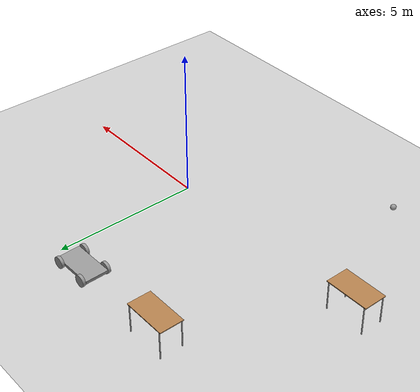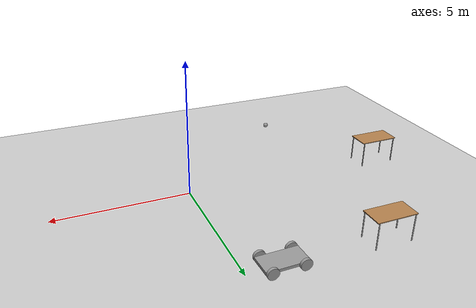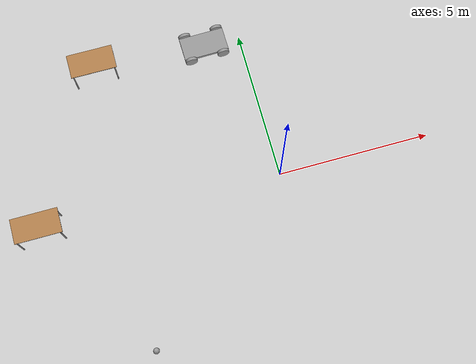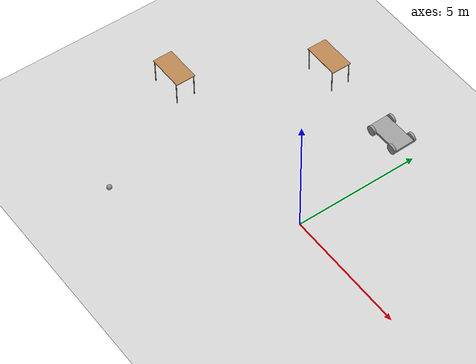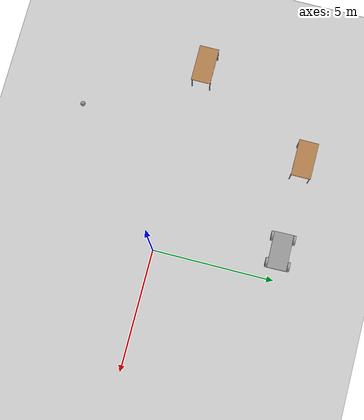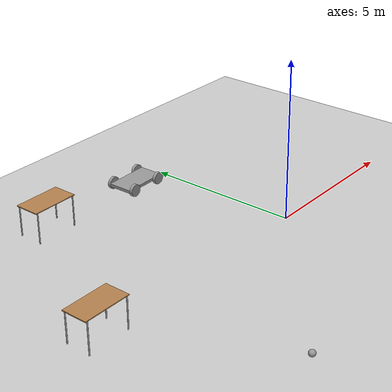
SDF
<sdf version="1.6">
 <world name="default">
  <model name="ground_plane">
   <static>1</static>
   <link name="link">
    <collision name="collision">
     <geometry><plane><normal>0 0 1</normal><size>100 100</size></plane></geometry>
     <surface>
      <contact><collide_bitmask>65535</collide_bitmask></contact>
      <friction><ode><mu>100</mu><mu2>50</mu2></ode></friction>
     </surface>
    </collision>
    <visual name="visual">
     <cast_shadows>0</cast_shadows>
     <geometry><plane><normal>0 0 1</normal><size>100 100</size></plane></geometry>
     <material>
      <script><uri>file://media/materials/scripts/gazebo.material</uri><name>Gazebo/Grey</name></script>
     </material>
    </visual>
   </link>
  </model>
  <model name="4_wheeled_robots">
   <link name="link_5">
    <inertial>
     <mass>1</mass>
     <inertia>
      <ixx>0.166667</ixx>
      <ixy>0</ixy>
      <ixz>0</ixz>
      <iyy>0.166667</iyy>
      <iyz>0</iyz>
      <izz>0.166667</izz>
     </inertia>
    </inertial>
    <pose>-0 0 0.2 0 -0 0</pose>
    <visual name="visual">
     <geometry><box><size>1.5 0.8 0.1</size></box></geometry>
     <material>
      <lighting>1</lighting>
      <script><uri>file://media/materials/scripts/gazebo.material</uri><name>Gazebo/Grey</name></script>
      <shader type="pixel"><normal_map>__default__</normal_map></shader>
      <ambient>0.3 0.3 0.3 1</ambient>
      <diffuse>0.7 0.7 0.7 1</diffuse>
      <specular>0.01 0.01 0.01 1</specular>
      <emissive>0 0 0 1</emissive>
     </material>
    </visual>
    <collision name="collision">
     <geometry><box><size>1.5 0.8 0.1</size></box></geometry>
     <surface>
      <friction>
       <ode><mu>1</mu><mu2>1</mu2><fdir1>0 0 0</fdir1><slip1>0</slip1><slip2>0</slip2></ode>
       <torsional>
        <coefficient>1</coefficient>
        <patch_radius>0</patch_radius>
        <surface_radius>0</surface_radius>
        <use_patch_radius>1</use_patch_radius>
        <ode><slip>0</slip></ode>
       </torsional>
      </friction>
      <bounce><restitution_coefficient>0</restitution_coefficient><threshold>1e+06</threshold></bounce>
      <contact>
       <collide_without_contact>0</collide_without_contact>
       <collide_without_contact_bitmask>1</collide_without_contact_bitmask>
       <collide_bitmask>1</collide_bitmask>
       <ode>
        <soft_cfm>0</soft_cfm>
        <soft_erp>0.2</soft_erp>
        <kp>1e+13</kp>
        <kd>1</kd>
        <max_vel>0.01</max_vel>
        <min_depth>0</min_depth>
       </ode>
       <bullet>
        <split_impulse>1</split_impulse>
        <split_impulse_penetration_threshold>-0.01</split_impulse_penetration_threshold>
        <soft_cfm>0</soft_cfm>
        <soft_erp>0.2</soft_erp>
        <kp>1e+13</kp>
        <kd>1</kd>
       </bullet>
      </contact>
     </surface>
    </collision>
   </link>
   <link name="link_6_clone_0">
    <inertial>
     <mass>1</mass>
     <inertia><ixx>0.145833</ixx><ixy>0</ixy><ixz>0</ixz><iyy>0.145833</iyy><iyz>0</iyz><izz>0.125</izz></inertia>
    </inertial>
    <pose>0.55 0.450019 0.2 1.5707 -0 0</pose>
    <visual name="visual">
     <geometry><cylinder><radius>0.2</radius><length>0.1</length></cylinder></geometry>
     <material>
      <lighting>1</lighting>
      <script><uri>file://media/materials/scripts/gazebo.material</uri><name>Gazebo/Grey</name></script>
      <shader type="pixel"><normal_map>__default__</normal_map></shader>
      <ambient>0.3 0.3 0.3 1</ambient>
      <diffuse>0.7 0.7 0.7 1</diffuse>
      <specular>0.01 0.01 0.01 1</specular>
      <emissive>0 0 0 1</emissive>
     </material>
    </visual>
    <collision name="collision">
     <geometry><cylinder><radius>0.2</radius><length>0.1</length></cylinder></geometry>
     <surface>
      <friction>
       <ode><mu>1</mu><mu2>1</mu2><fdir1>0 0 0</fdir1><slip1>0</slip1><slip2>0</slip2></ode>
       <torsional>
        <coefficient>1</coefficient>
        <patch_radius>0</patch_radius>
        <surface_radius>0</surface_radius>
        <use_patch_radius>1</use_patch_radius>
        <ode><slip>0</slip></ode>
       </torsional>
      </friction>
      <bounce><restitution_coefficient>0</restitution_coefficient><threshold>1e+06</threshold></bounce>
      <contact>
       <collide_without_contact>0</collide_without_contact>
       <collide_without_contact_bitmask>1</collide_without_contact_bitmask>
       <collide_bitmask>1</collide_bitmask>
       <ode>
        <soft_cfm>0</soft_cfm>
        <soft_erp>0.2</soft_erp>
        <kp>1e+13</kp>
        <kd>1</kd>
        <max_vel>0.01</max_vel>
        <min_depth>0</min_depth>
       </ode>
       <bullet>
        <split_impulse>1</split_impulse>
        <split_impulse_penetration_threshold>-0.01</split_impulse_penetration_threshold>
        <soft_cfm>0</soft_cfm>
        <soft_erp>0.2</soft_erp>
        <kp>1e+13</kp>
        <kd>1</kd>
       </bullet>
      </contact>
     </surface>
    </collision>
   </link>
   <link name="link_6_clone_0_clone">
    <inertial>
     <mass>1</mass>
     <inertia><ixx>0.145833</ixx><ixy>0</ixy><ixz>0</ixz><iyy>0.145833</iyy><iyz>0</iyz><izz>0.125</izz></inertia>
    </inertial>
    <pose>0.55 -0.450019 0.2 1.5707 -0 0</pose>
    <visual name="visual">
     <geometry><cylinder><radius>0.2</radius><length>0.1</length></cylinder></geometry>
     <material>
      <lighting>1</lighting>
      <script><uri>file://media/materials/scripts/gazebo.material</uri><name>Gazebo/Grey</name></script>
      <shader type="pixel"><normal_map>__default__</normal_map></shader>
      <ambient>0.3 0.3 0.3 1</ambient>
      <diffuse>0.7 0.7 0.7 1</diffuse>
      <specular>0.01 0.01 0.01 1</specular>
      <emissive>0 0 0 1</emissive>
     </material>
    </visual>
    <collision name="collision">
     <geometry><cylinder><radius>0.2</radius><length>0.1</length></cylinder></geometry>
     <surface>
      <friction>
       <ode><mu>1</mu><mu2>1</mu2><fdir1>0 0 0</fdir1><slip1>0</slip1><slip2>0</slip2></ode>
       <torsional>
        <coefficient>1</coefficient>
        <patch_radius>0</patch_radius>
        <surface_radius>0</surface_radius>
        <use_patch_radius>1</use_patch_radius>
        <ode><slip>0</slip></ode>
       </torsional>
      </friction>
      <bounce><restitution_coefficient>0</restitution_coefficient><threshold>1e+06</threshold></bounce>
      <contact>
       <collide_without_contact>0</collide_without_contact>
       <collide_without_contact_bitmask>1</collide_without_contact_bitmask>
       <collide_bitmask>1</collide_bitmask>
       <ode>
        <soft_cfm>0</soft_cfm>
        <soft_erp>0.2</soft_erp>
        <kp>1e+13</kp>
        <kd>1</kd>
        <max_vel>0.01</max_vel>
        <min_depth>0</min_depth>
       </ode>
       <bullet>
        <split_impulse>1</split_impulse>
        <split_impulse_penetration_threshold>-0.01</split_impulse_penetration_threshold>
        <soft_cfm>0</soft_cfm>
        <soft_erp>0.2</soft_erp>
        <kp>1e+13</kp>
        <kd>1</kd>
       </bullet>
      </contact>
     </surface>
    </collision>
   </link>
   <link name="link_6_clone_0_clone_0">
    <inertial>
     <mass>1</mass>
     <inertia><ixx>0.145833</ixx><ixy>0</ixy><ixz>0</ixz><iyy>0.145833</iyy><iyz>0</iyz><izz>0.125</izz></inertia>
    </inertial>
    <pose>-0.55 -0.450019 0.2 1.5707 -0 0</pose>
    <visual name="visual">
     <geometry><cylinder><radius>0.2</radius><length>0.1</length></cylinder></geometry>
     <material>
      <lighting>1</lighting>
      <script><uri>file://media/materials/scripts/gazebo.material</uri><name>Gazebo/Grey</name></script>
      <shader type="pixel"><normal_map>__default__</normal_map></shader>
      <ambient>0.3 0.3 0.3 1</ambient>
      <diffuse>0.7 0.7 0.7 1</diffuse>
      <specular>0.01 0.01 0.01 1</specular>
      <emissive>0 0 0 1</emissive>
     </material>
    </visual>
    <collision name="collision">
     <geometry><cylinder><radius>0.2</radius><length>0.1</length></cylinder></geometry>
     <surface>
      <friction>
       <ode><mu>1</mu><mu2>1</mu2><fdir1>0 0 0</fdir1><slip1>0</slip1><slip2>0</slip2></ode>
       <torsional>
        <coefficient>1</coefficient>
        <patch_radius>0</patch_radius>
        <surface_radius>0</surface_radius>
        <use_patch_radius>1</use_patch_radius>
        <ode><slip>0</slip></ode>
       </torsional>
      </friction>
      <bounce><restitution_coefficient>0</restitution_coefficient><threshold>1e+06</threshold></bounce>
      <contact>
       <collide_without_contact>0</collide_without_contact>
       <collide_without_contact_bitmask>1</collide_without_contact_bitmask>
       <collide_bitmask>1</collide_bitmask>
       <ode>
        <soft_cfm>0</soft_cfm>
        <soft_erp>0.2</soft_erp>
        <kp>1e+13</kp>
        <kd>1</kd>
        <max_vel>0.01</max_vel>
        <min_depth>0</min_depth>
       </ode>
       <bullet>
        <split_impulse>1</split_impulse>
        <split_impulse_penetration_threshold>-0.01</split_impulse_penetration_threshold>
        <soft_cfm>0</soft_cfm>
        <soft_erp>0.2</soft_erp>
        <kp>1e+13</kp>
        <kd>1</kd>
       </bullet>
      </contact>
     </surface>
    </collision>
   </link>
   <link name="link_6_clone_1">
    <inertial>
     <mass>1</mass>
     <inertia><ixx>0.145833</ixx><ixy>0</ixy><ixz>0</ixz><iyy>0.145833</iyy><iyz>0</iyz><izz>0.125</izz></inertia>
    </inertial>
    <pose>-0.55 0.450019 0.2 1.5707 -0 0</pose>
    <visual name="visual">
     <geometry><cylinder><radius>0.2</radius><length>0.1</length></cylinder></geometry>
     <material>
      <lighting>1</lighting>
      <script><uri>file://media/materials/scripts/gazebo.material</uri><name>Gazebo/Grey</name></script>
      <shader type="pixel"><normal_map>__default__</normal_map></shader>
      <ambient>0.3 0.3 0.3 1</ambient>
      <diffuse>0.7 0.7 0.7 1</diffuse>
      <specular>0.01 0.01 0.01 1</specular>
      <emissive>0 0 0 1</emissive>
     </material>
    </visual>
    <collision name="collision">
     <geometry><cylinder><radius>0.2</radius><length>0.1</length></cylinder></geometry>
     <surface>
      <friction>
       <ode><mu>1</mu><mu2>1</mu2><fdir1>0 0 0</fdir1><slip1>0</slip1><slip2>0</slip2></ode>
       <torsional>
        <coefficient>1</coefficient>
        <patch_radius>0</patch_radius>
        <surface_radius>0</surface_radius>
        <use_patch_radius>1</use_patch_radius>
        <ode><slip>0</slip></ode>
       </torsional>
      </friction>
      <bounce><restitution_coefficient>0</restitution_coefficient><threshold>1e+06</threshold></bounce>
      <contact>
       <collide_without_contact>0</collide_without_contact>
       <collide_without_contact_bitmask>1</collide_without_contact_bitmask>
       <collide_bitmask>1</collide_bitmask>
       <ode>
        <soft_cfm>0</soft_cfm>
        <soft_erp>0.2</soft_erp>
        <kp>1e+13</kp>
        <kd>1</kd>
        <max_vel>0.01</max_vel>
        <min_depth>0</min_depth>
       </ode>
       <bullet>
        <split_impulse>1</split_impulse>
        <split_impulse_penetration_threshold>-0.01</split_impulse_penetration_threshold>
        <soft_cfm>0</soft_cfm>
        <soft_erp>0.2</soft_erp>
        <kp>1e+13</kp>
        <kd>1</kd>
       </bullet>
      </contact>
     </surface>
    </collision>
   </link>
   <joint name="link_5_JOINT_11" type="revolute">
    <parent>link_5</parent>
    <child>link_6_clone_0_clone_0</child>
    <axis>
     <xyz>0 0 1</xyz>
     <use_parent_model_frame>0</use_parent_model_frame>
     <limit>
      <lower>-1.79769e+308</lower>
      <upper>1.79769e+308</upper>
      <effort>-1</effort>
      <velocity>-1</velocity>
     </limit>
     <dynamics>
      <spring_reference>0</spring_reference>
      <spring_stiffness>0</spring_stiffness>
      <damping>0</damping>
     </dynamics>
    </axis>
    <physics>
     <ode><limit><cfm>0</cfm><erp>0.2</erp></limit><suspension><cfm>0</cfm><erp>0.2</erp></suspension></ode>
    </physics>
   </joint>
   <joint name="link_5_JOINT_12" type="revolute">
    <parent>link_5</parent>
    <child>link_6_clone_0_clone</child>
    <axis>
     <xyz>0 0 1</xyz>
     <use_parent_model_frame>0</use_parent_model_frame>
     <limit>
      <lower>-1.79769e+308</lower>
      <upper>1.79769e+308</upper>
      <effort>-1</effort>
      <velocity>-1</velocity>
     </limit>
     <dynamics>
      <spring_reference>0</spring_reference>
      <spring_stiffness>0</spring_stiffness>
      <damping>0</damping>
     </dynamics>
    </axis>
    <physics>
     <ode><limit><cfm>0</cfm><erp>0.2</erp></limit><suspension><cfm>0</cfm><erp>0.2</erp></suspension></ode>
    </physics>
   </joint>
   <joint name="link_5_JOINT_13" type="revolute">
    <parent>link_5</parent>
    <child>link_6_clone_1</child>
    <axis>
     <xyz>0 0 1</xyz>
     <use_parent_model_frame>0</use_parent_model_frame>
     <limit>
      <lower>-1.79769e+308</lower>
      <upper>1.79769e+308</upper>
      <effort>-1</effort>
      <velocity>-1</velocity>
     </limit>
     <dynamics>
      <spring_reference>0</spring_reference>
      <spring_stiffness>0</spring_stiffness>
      <damping>0</damping>
     </dynamics>
    </axis>
    <physics>
     <ode><limit><cfm>0</cfm><erp>0.2</erp></limit><suspension><cfm>0</cfm><erp>0.2</erp></suspension></ode>
    </physics>
   </joint>
   <joint name="link_5_JOINT_14" type="revolute">
    <parent>link_5</parent>
    <child>link_6_clone_0</child>
    <axis>
     <xyz>0 0 1</xyz>
     <use_parent_model_frame>0</use_parent_model_frame>
     <limit>
      <lower>-1.79769e+308</lower>
      <upper>1.79769e+308</upper>
      <effort>-1</effort>
      <velocity>-1</velocity>
     </limit>
     <dynamics>
      <spring_reference>0</spring_reference>
      <spring_stiffness>0</spring_stiffness>
      <damping>0</damping>
     </dynamics>
    </axis>
    <physics>
     <ode><limit><cfm>0</cfm><erp>0.2</erp></limit><suspension><cfm>0</cfm><erp>0.2</erp></suspension></ode>
    </physics>
   </joint>
   <static>0</static>
   <pose>-1.21113 4.98572 5e-06 0 -0 0.020301</pose>
   <plugin name="model_push" filename="libmodel_push.so"/>
  </model>
  <model name="table">
   <static>1</static>
   <link name="link">
    <collision name="surface">
     <pose>0 0 1 0 -0 0</pose>
     <geometry><box><size>1.5 0.8 0.03</size></box></geometry>
     <surface><friction><ode><mu>0.6</mu><mu2>0.6</mu2></ode></friction></surface>
    </collision>
    <visual name="visual1">
     <pose>0 0 1 0 -0 0</pose>
     <geometry><box><size>1.5 0.8 0.03</size></box></geometry>
     <material>
      <script><uri>file://media/materials/scripts/gazebo.material</uri><name>Gazebo/Wood</name></script>
     </material>
    </visual>
    <collision name="front_left_leg">
     <pose>0.68 0.38 0.5 0 -0 0</pose>
     <geometry><cylinder><radius>0.02</radius><length>1</length></cylinder></geometry>
    </collision>
    <visual name="front_left_leg">
     <pose>0.68 0.38 0.5 0 -0 0</pose>
     <geometry><cylinder><radius>0.02</radius><length>1</length></cylinder></geometry>
     <material>
      <script><uri>file://media/materials/scripts/gazebo.material</uri><name>Gazebo/Grey</name></script>
     </material>
    </visual>
    <collision name="front_right_leg">
     <pose>0.68 -0.38 0.5 0 -0 0</pose>
     <geometry><cylinder><radius>0.02</radius><length>1</length></cylinder></geometry>
    </collision>
    <visual name="front_right_leg">
     <pose>0.68 -0.38 0.5 0 -0 0</pose>
     <geometry><cylinder><radius>0.02</radius><length>1</length></cylinder></geometry>
     <material>
      <script><uri>file://media/materials/scripts/gazebo.material</uri><name>Gazebo/Grey</name></script>
     </material>
    </visual>
    <collision name="back_right_leg">
     <pose>-0.68 -0.38 0.5 0 -0 0</pose>
     <geometry><cylinder><radius>0.02</radius><length>1</length></cylinder></geometry>
    </collision>
    <visual name="back_right_leg">
     <pose>-0.68 -0.38 0.5 0 -0 0</pose>
     <geometry><cylinder><radius>0.02</radius><length>1</length></cylinder></geometry>
     <material>
      <script><uri>file://media/materials/scripts/gazebo.material</uri><name>Gazebo/Grey</name></script>
     </material>
    </visual>
    <collision name="back_left_leg">
     <pose>-0.68 0.38 0.5 0 -0 0</pose>
     <geometry><cylinder><radius>0.02</radius><length>1</length></cylinder></geometry>
    </collision>
    <visual name="back_left_leg">
     <pose>-0.68 0.38 0.5 0 -0 0</pose>
     <geometry><cylinder><radius>0.02</radius><length>1</length></cylinder></geometry>
     <material>
      <script><uri>file://media/materials/scripts/gazebo.material</uri><name>Gazebo/Grey</name></script>
     </material>
    </visual>
   </link>
   <pose>-7.78831 0.182694 0 0 -0 0</pose>
  </model>
  <model name="table_1">
   <static>1</static>
   <link name="link">
    <collision name="surface">
     <pose>0 0 1 0 -0 0</pose>
     <geometry><box><size>1.5 0.8 0.03</size></box></geometry>
     <surface><friction><ode><mu>0.6</mu><mu2>0.6</mu2></ode></friction></surface>
    </collision>
    <visual name="visual1">
     <pose>0 0 1 0 -0 0</pose>
     <geometry><box><size>1.5 0.8 0.03</size></box></geometry>
     <material>
      <script><uri>file://media/materials/scripts/gazebo.material</uri><name>Gazebo/Wood</name></script>
     </material>
    </visual>
    <collision name="front_left_leg">
     <pose>0.68 0.38 0.5 0 -0 0</pose>
     <geometry><cylinder><radius>0.02</radius><length>1</length></cylinder></geometry>
    </collision>
    <visual name="front_left_leg">
     <pose>0.68 0.38 0.5 0 -0 0</pose>
     <geometry><cylinder><radius>0.02</radius><length>1</length></cylinder></geometry>
     <material>
      <script><uri>file://media/materials/scripts/gazebo.material</uri><name>Gazebo/Grey</name></script>
     </material>
    </visual>
    <collision name="front_right_leg">
     <pose>0.68 -0.38 0.5 0 -0 0</pose>
     <geometry><cylinder><radius>0.02</radius><length>1</length></cylinder></geometry>
    </collision>
    <visual name="front_right_leg">
     <pose>0.68 -0.38 0.5 0 -0 0</pose>
     <geometry><cylinder><radius>0.02</radius><length>1</length></cylinder></geometry>
     <material>
      <script><uri>file://media/materials/scripts/gazebo.material</uri><name>Gazebo/Grey</name></script>
     </material>
    </visual>
    <collision name="back_right_leg">
     <pose>-0.68 -0.38 0.5 0 -0 0</pose>
     <geometry><cylinder><radius>0.02</radius><length>1</length></cylinder></geometry>
    </collision>
    <visual name="back_right_leg">
     <pose>-0.68 -0.38 0.5 0 -0 0</pose>
     <geometry><cylinder><radius>0.02</radius><length>1</length></cylinder></geometry>
     <material>
      <script><uri>file://media/materials/scripts/gazebo.material</uri><name>Gazebo/Grey</name></script>
     </material>
    </visual>
    <collision name="back_left_leg">
     <pose>-0.68 0.38 0.5 0 -0 0</pose>
     <geometry><cylinder><radius>0.02</radius><length>1</length></cylinder></geometry>
    </collision>
    <visual name="back_left_leg">
     <pose>-0.68 0.38 0.5 0 -0 0</pose>
     <geometry><cylinder><radius>0.02</radius><length>1</length></cylinder></geometry>
     <material>
      <script><uri>file://media/materials/scripts/gazebo.material</uri><name>Gazebo/Grey</name></script>
     </material>
    </visual>
   </link>
   <pose>-4.93525 5.03036 0 0 -0 0</pose>
  </model>
  <model name="my_white_ball">
   <link name="link_0">
    <inertial>
     <mass>1</mass>
     <inertia><ixx>0.1</ixx><ixy>0</ixy><ixz>0</ixz><iyy>0.1</iyy><iyz>0</iyz><izz>0.1</izz></inertia>
    </inertial>
    <visual name="visual">
     <geometry><sphere><radius>0.1</radius></sphere></geometry>
     <material>
      <lighting>1</lighting>
      <script><uri>file://media/materials/scripts/gazebo.material</uri><name>Gazebo/Grey</name></script>
      <shader type="pixel"><normal_map>__default__</normal_map></shader>
      <ambient>1 1 1 1</ambient>
      <diffuse>1 1 1 1</diffuse>
      <specular>1 1 1 1</specular>
      <emissive>1 1 1 1</emissive>
     </material>
    </visual>
    <collision name="collision">
     <geometry><sphere><radius>0.1</radius></sphere></geometry>
     <surface>
      <friction>
       <ode><mu>1</mu><mu2>1</mu2><fdir1>0 0 0</fdir1><slip1>0</slip1><slip2>0</slip2></ode>
       <torsional>
        <coefficient>1</coefficient>
        <patch_radius>0</patch_radius>
        <surface_radius>0</surface_radius>
        <use_patch_radius>1</use_patch_radius>
        <ode><slip>0</slip></ode>
       </torsional>
      </friction>
      <bounce><restitution_coefficient>0</restitution_coefficient><threshold>1e+06</threshold></bounce>
      <contact>
       <collide_without_contact>0</collide_without_contact>
       <collide_without_contact_bitmask>1</collide_without_contact_bitmask>
       <collide_bitmask>1</collide_bitmask>
       <ode>
        <soft_cfm>0</soft_cfm>
        <soft_erp>0.2</soft_erp>
        <kp>1e+13</kp>
        <kd>1</kd>
        <max_vel>0.01</max_vel>
        <min_depth>0</min_depth>
       </ode>
       <bullet>
        <split_impulse>1</split_impulse>
        <split_impulse_penetration_threshold>-0.01</split_impulse_penetration_threshold>
        <soft_cfm>0</soft_cfm>
        <soft_erp>0.2</soft_erp>
        <kp>1e+13</kp>
        <kd>1</kd>
       </bullet>
      </contact>
     </surface>
    </collision>
   </link>
   <static>0</static>
   <pose>-5.20187 -4.38336 0.1 0 -0 0</pose>
  </model>
 </world>
</sdf>
